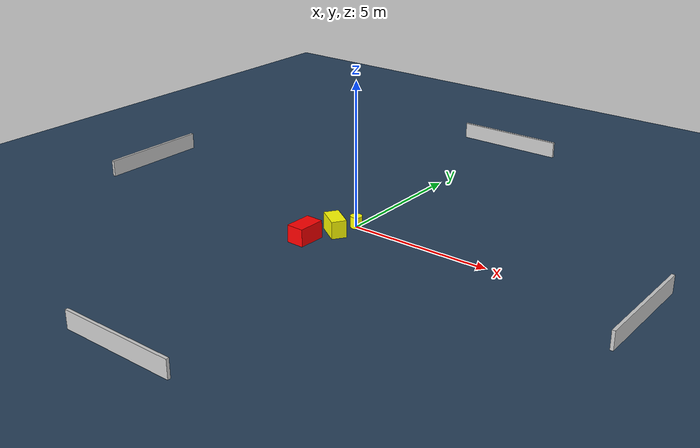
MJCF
<?xml version="1.0" ?>
<mujoco model="generated_environment">
  <option timestep="0.01" integrator="RK4" cone="elliptic"/>
  <default>
    <geom density="1"/>
  </default>
  <asset>
    <texture builtin="gradient" height="3072" name="skybox" rgb1="0.3 0.5 0.7" rgb2="0 0 0" type="skybox" width="512"/>
    <texture builtin="checker" height="300" name="groundplane" rgb1="0.2 0.3 0.4" rgb2="0.1 0.2 0.3" type="2d" width="300"/>
    <material name="groundplane" reflectance="0.2" texrepeat="5 5" texture="groundplane"/>
  </asset>
  <worldbody>
    <light dir="0 0 -1" directional="true" pos="0 0 1.5"/>
    <geom condim="3" friction="0.5 0.005 0.001" material="groundplane" name="floor" pos="0 0 0" size="0 0 0.05" type="plane"/>
    <body name="walls">
      <geom name="wall_1" condim="4" pos="-10.0 0.0 0.3" rgba="0.800000011920929 0.800000011920929 0.800000011920929 1.0" size="0.05 2.0 0.3" type="box"/>
      <geom name="wall_2" condim="4" pos="10.0 0.0 0.3" rgba="0.800000011920929 0.800000011920929 0.800000011920929 1.0" size="0.05 2.0 0.3" type="box"/>
      <geom name="wall_3" condim="4" pos="0.0 -10.0 0.3" rgba="0.800000011920929 0.800000011920929 0.800000011920929 1.0" size="2.0 0.05 0.3" type="box"/>
      <geom name="wall_4" condim="4" pos="0.0 10.0 0.3" rgba="0.800000011920929 0.800000011920929 0.800000011920929 1.0" size="2.0 0.05 0.3" type="box"/>
    </body>
    <body name="robot">
      <joint name="joint_x" type="slide" pos="0 0 0" axis="1 0 0"/>
      <joint name="joint_y" type="slide" pos="0 0 0" axis="0 1 0"/>
      <geom name="robot" type="cylinder" pos="0.0 0.0 0.2" size="0.2 0.2 0.0" mass="5.0" friction="1.0 0.005 0.0001" condim="4" rgba="1.0 1.0 0.0 1.0"/>
    </body>
    <body name="obstacle_1_movable">
      <geom name="obstacle_1_movable" condim="4" pos="-0.23791982925635938 -0.8156664566050791 0.3" euler="0 0 326.50048457041305" friction="0.0 0.005 0.001" rgba="1.0 1.0 0.0 1.0" size="0.4428106244454345 0.25471186875228485 0.3" type="box" mass="0.1"/>
      <joint type="free"/>
    </body>
    <body name="obstacle_2_static">
      <geom name="obstacle_2_static" condim="4" pos="-0.6757167507575771 -1.8130927453934356 0.3" euler="0 0 88.65536604536791" friction="0.0 0.005 0.001" rgba="1.0 0.0 0.0 1.0" size="0.47990174598660323 0.3090475483026973 0.3" type="box"/>
    </body>
  </worldbody>
  <actuator>
    <motor name="actuator_x" joint="joint_x" gear="1" ctrlrange="-1 1"/>
    <motor name="actuator_y" joint="joint_y" gear="1" ctrlrange="-1 1"/>
  </actuator>
</mujoco>
